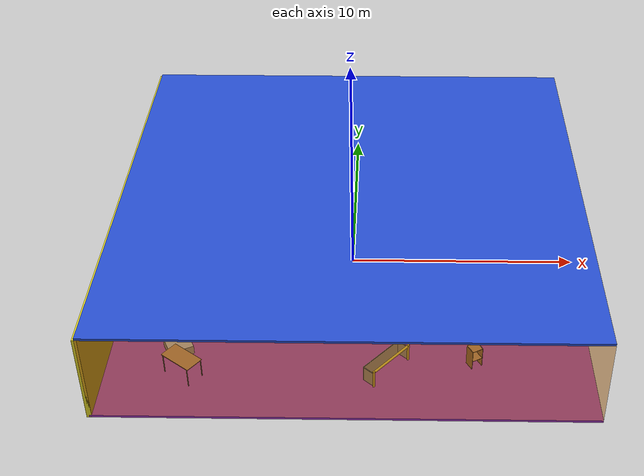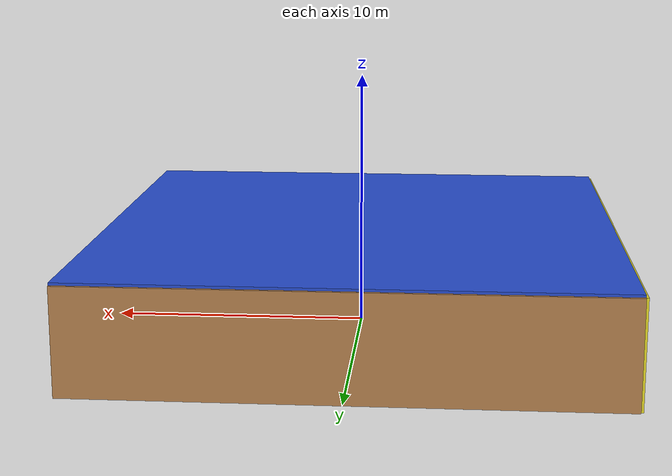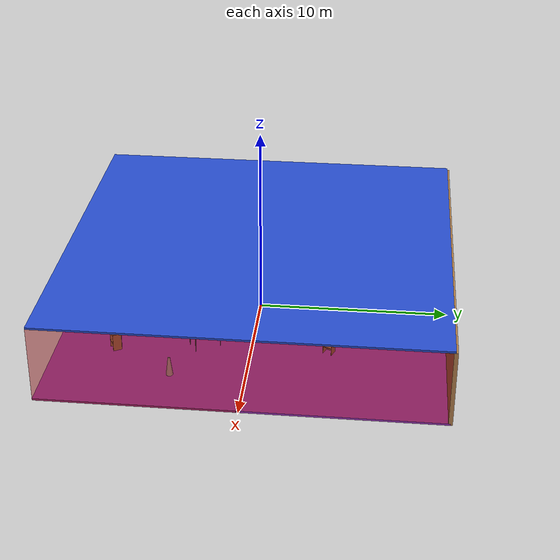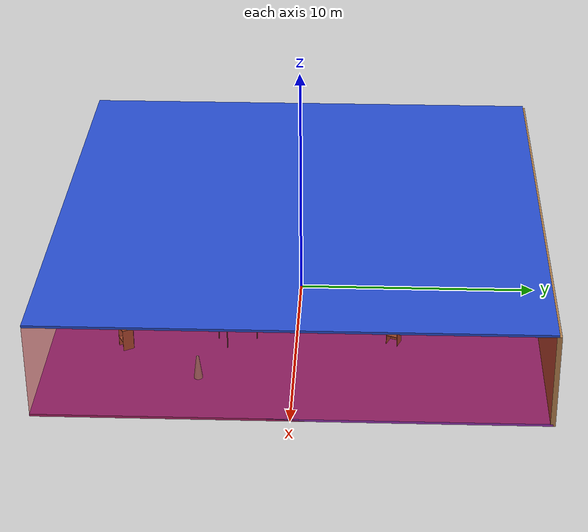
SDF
<sdf version="1.4">
 <world name="default">
  <physics type="ode">
   <max_step_size>0.001</max_step_size>
   <real_time_factor>1</real_time_factor>
   <real_time_update_rate>1000</real_time_update_rate>
   <gravity>0 0 -9.8</gravity>
  </physics>
  <scene><ambient>0.4 0.4 0.4 1</ambient><background>0.7 0.7 0.7 1</background><shadows>1</shadows></scene>
  <model name="Surrounding">
   <static>1</static>
   <link name="Ceiling">
    <collision name="Ceiling_Collision"><geometry><box><size>20 20 0.1</size></box></geometry></collision>
    <visual name="Ceiling_Visual">
     <geometry><box><size>20 20 0.1</size></box></geometry>
     <material>
      <script><uri>file://media/materials/scripts/gazebo.material</uri><name>Gazebo/BlueGlow</name></script>
     </material>
    </visual>
    <pose>0 0 4.05 0 0 0</pose>
   </link>
   <link name="Wall_South">
    <collision name="Wall_South_Collision">
     <geometry><box><size>20 0 4</size></box></geometry>
     <pose>0 0 2 0 -0 0</pose>
    </collision>
    <visual name="Wall_South_Visual">
     <pose>0 0 2 0 -0 0</pose>
     <geometry><box><size>20 0 4</size></box></geometry>
     <material>
      <script>
       <uri>file://media/materials/scripts/gazebo.material</uri>
       <name>Gazebo/OrangeTransparent</name>
      </script>
     </material>
    </visual>
    <velocity_decay><linear>0</linear><angular>0</angular></velocity_decay>
    <pose>0 -10 0 0 -0 0</pose>
   </link>
   <link name="Wall_East">
    <collision name="Wall_21_Collision">
     <geometry><box><size>20 0 4</size></box></geometry>
     <pose>0 0 2 0 -0 0</pose>
    </collision>
    <visual name="Wall_21_Visual">
     <pose>0 0 2 0 -0 0</pose>
     <geometry><box><size>20 0 4</size></box></geometry>
     <material>
      <script><uri>file://media/materials/scripts/gazebo.material</uri><name>Gazebo/RedTransparent</name></script>
     </material>
    </visual>
    <velocity_decay><linear>0</linear><angular>0</angular></velocity_decay>
    <pose>10 0 0 0 -0 1.5708</pose>
   </link>
   <link name="Wall_North">
    <collision name="Wall_22_Collision">
     <geometry><box><size>20 0.2 4</size></box></geometry>
     <pose>0 0 2 0 -0 0</pose>
    </collision>
    <visual name="Wall_22_Visual">
     <pose>0 0 2 0 -0 0</pose>
     <geometry><box><size>20 0.2 4</size></box></geometry>
     <material>
      <script><uri>file://media/materials/scripts/gazebo.material</uri><name>Gazebo/WoodPallet</name></script>
     </material>
    </visual>
    <velocity_decay><linear>0</linear><angular>0</angular></velocity_decay>
    <pose>0 10 0 0 -0 0</pose>
   </link>
   <link name="Wall_West">
    <collision name="Wall_23_Collision">
     <geometry><box><size>20 0.2 4</size></box></geometry>
     <pose>0 0 2 0 -0 0</pose>
    </collision>
    <visual name="Wall_23_Visual">
     <pose>0 0 2 0 -0 0</pose>
     <geometry><box><size>20 0.2 4</size></box></geometry>
     <material>
      <script><uri>file://media/materials/scripts/gazebo.material</uri><name>Gazebo/Yellow</name></script>
     </material>
    </visual>
    <velocity_decay><linear>0</linear><angular>0</angular></velocity_decay>
    <pose>-10 0 0 0 0 -1.5708</pose>
   </link>
   <link name="Ground_link">
    <collision name="collision">
     <pose>0 0 .05 0 -0 0</pose>
     <geometry><box><size>20 20 0.1</size></box></geometry>
    </collision>
    <visual name="visual">
     <pose>0 0 .05 0 -0 0</pose>
     <geometry><box><size>20 20 0.1</size></box></geometry>
     <material>
      <script><uri>file://media/materials/scripts/gazebo.material</uri><name>Gazebo/Purple</name></script>
     </material>
    </visual>
   </link>
   <static>1</static>
  </model>
  <spherical_coordinates>
   <surface_model>EARTH_WGS84</surface_model>
   <latitude_deg>0</latitude_deg>
   <longitude_deg>0</longitude_deg>
   <elevation>0</elevation>
   <heading_deg>0</heading_deg>
  </spherical_coordinates>
  <light name="lightball_0" type="diffuse">
   <diffuse>0.8 0.8 0.8 1</diffuse>
   <specular>0.2 0.2 0.2 1</specular>
   <attenuation>
    <range>100</range>
    <constant>0.7</constant>
    <linear>0.01</linear>
    <quadratic>0.001</quadratic>
   </attenuation>
   <direction>-0.5 0.1 -0.9</direction>
   <pose>4.28370426314 -7.36053097028 2.30106877081 0 0 0</pose>
  </light>
  <light name="lightball_1" type="diffuse">
   <diffuse>0.8 0.8 0.8 1</diffuse>
   <specular>0.2 0.2 0.2 1</specular>
   <attenuation>
    <range>100</range>
    <constant>0.7</constant>
    <linear>0.01</linear>
    <quadratic>0.001</quadratic>
   </attenuation>
   <direction>-0.5 0.1 -0.9</direction>
   <pose>8.1188536642 0.56340783907 1.1500194415 0 0 0</pose>
  </light>
  <light name="lightball_2" type="diffuse">
   <diffuse>0.8 0.8 0.8 1</diffuse>
   <specular>0.2 0.2 0.2 1</specular>
   <attenuation>
    <range>100</range>
    <constant>0.7</constant>
    <linear>0.01</linear>
    <quadratic>0.001</quadratic>
   </attenuation>
   <direction>-0.5 0.1 -0.9</direction>
   <pose>8.16151219887 5.31005383369 1.72444036576 0 0 0</pose>
  </light>
  <light name="lightball_3" type="diffuse">
   <diffuse>0.8 0.8 0.8 1</diffuse>
   <specular>0.2 0.2 0.2 1</specular>
   <attenuation>
    <range>100</range>
    <constant>0.7</constant>
    <linear>0.01</linear>
    <quadratic>0.001</quadratic>
   </attenuation>
   <direction>-0.5 0.1 -0.9</direction>
   <pose>-4.41448779939 -5.62916493878 3.38871286761 0 0 0</pose>
  </light>
  <light name="lightball_4" type="diffuse">
   <diffuse>0.8 0.8 0.8 1</diffuse>
   <specular>0.2 0.2 0.2 1</specular>
   <attenuation>
    <range>100</range>
    <constant>0.7</constant>
    <linear>0.01</linear>
    <quadratic>0.001</quadratic>
   </attenuation>
   <direction>-0.5 0.1 -0.9</direction>
   <pose>7.63592964999 -6.01467580483 3.36016472703 0 0 0</pose>
  </light>
  <light name="lightball_5" type="diffuse">
   <diffuse>0.8 0.8 0.8 1</diffuse>
   <specular>0.2 0.2 0.2 1</specular>
   <attenuation>
    <range>100</range>
    <constant>0.7</constant>
    <linear>0.01</linear>
    <quadratic>0.001</quadratic>
   </attenuation>
   <direction>-0.5 0.1 -0.9</direction>
   <pose>9.07539734877 5.24065159409 0.726428017722 0 0 0</pose>
  </light>
  <light name="lightball_6" type="diffuse">
   <diffuse>0.8 0.8 0.8 1</diffuse>
   <specular>0.2 0.2 0.2 1</specular>
   <attenuation>
    <range>100</range>
    <constant>0.7</constant>
    <linear>0.01</linear>
    <quadratic>0.001</quadratic>
   </attenuation>
   <direction>-0.5 0.1 -0.9</direction>
   <pose>-3.72874853285 2.76395053143 2.93239283929 0 0 0</pose>
  </light>
  <light name="lightball_7" type="diffuse">
   <diffuse>0.8 0.8 0.8 1</diffuse>
   <specular>0.2 0.2 0.2 1</specular>
   <attenuation>
    <range>100</range>
    <constant>0.7</constant>
    <linear>0.01</linear>
    <quadratic>0.001</quadratic>
   </attenuation>
   <direction>-0.5 0.1 -0.9</direction>
   <pose>-0.854067711906 -1.98642510557 0.577778566667 0 0 0</pose>
  </light>
  <light name="lightball_8" type="diffuse">
   <diffuse>0.8 0.8 0.8 1</diffuse>
   <specular>0.2 0.2 0.2 1</specular>
   <attenuation>
    <range>100</range>
    <constant>0.7</constant>
    <linear>0.01</linear>
    <quadratic>0.001</quadratic>
   </attenuation>
   <direction>-0.5 0.1 -0.9</direction>
   <pose>8.12808522221 3.42611861247 3.05338782214 0 0 0</pose>
  </light>
  <light name="lightball_9" type="diffuse">
   <diffuse>0.8 0.8 0.8 1</diffuse>
   <specular>0.2 0.2 0.2 1</specular>
   <attenuation>
    <range>100</range>
    <constant>0.7</constant>
    <linear>0.01</linear>
    <quadratic>0.001</quadratic>
   </attenuation>
   <direction>-0.5 0.1 -0.9</direction>
   <pose>-6.94241589413 -9.77143136706 0.899773548875 0 0 0</pose>
  </light>
  <light name="lightball_10" type="diffuse">
   <diffuse>0.8 0.8 0.8 1</diffuse>
   <specular>0.2 0.2 0.2 1</specular>
   <attenuation>
    <range>100</range>
    <constant>0.7</constant>
    <linear>0.01</linear>
    <quadratic>0.001</quadratic>
   </attenuation>
   <direction>-0.5 0.1 -0.9</direction>
   <pose>-4.48593114087 2.02423390093 2.62078370057 0 0 0</pose>
  </light>
  <include><uri>model://table</uri><pose>-6.66995689077 -7.62604386321 0 0 0 2.49036694324</pose></include>
  <include>
   <uri>model://textured_shapes</uri>
   <pose>-7.74003153296 -4.86779798463 0 0 0 0.468841284859</pose>
  </include>
  <include>
   <uri>model://robocup_3Dsim_goal</uri>
   <pose>1.75871995274 -7.45539045532 0 0 0 2.42191708832</pose>
  </include>
  <include><uri>model://cabinet</uri><pose>5.15320739839 -6.8973935244 0 0 0 2.07641318951</pose></include>
  <include><uri>model://table</uri><pose>4.40228649422 -2.39924334193 0 0 0 2.11669914312</pose></include>
  <include><uri>model://cabinet</uri><pose>4.4715032168 3.96387552357 0 0 0 2.76019576658</pose></include>
  <include>
   <uri>model://construction_cone</uri>
   <pose>7.2634391465 -3.76676724064 0 0 0 2.34151077775</pose>
  </include>
 </world>
</sdf>

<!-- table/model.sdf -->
<sdf version="1.5">
  <model name="table">
    <static>true</static>
    <link name="link">
      <collision name="surface">
        <pose>0 0 1.0 0 0 0</pose>
        <geometry>
          <box>
            <size>1.5 0.8 0.03</size>
          </box>
        </geometry>
        <surface>
          <friction>
            <ode>
              <mu>0.6</mu>
              <mu2>0.6</mu2>
            </ode>
          </friction>
        </surface>
      </collision>
      <visual name="visual1">
        <pose>0 0 1.0 0 0 0</pose>
        <geometry>
          <box>
            <size>1.5 0.8 0.03</size>
          </box>
        </geometry>
        <material>
          <script>
            <uri>model://media/materials/scripts/gazebo.material</uri>
            <name>Gazebo/Wood</name>
          </script>
        </material>
      </visual>
      <collision name="front_left_leg">
        <pose>0.68 0.38 0.5 0 0 0</pose>
        <geometry>
          <cylinder>
            <radius>0.02</radius>
            <length>1.0</length>
          </cylinder>
        </geometry>
      </collision>
      <visual name="front_left_leg">
        <pose>0.68 0.38 0.5 0 0 0</pose>
        <geometry>
          <cylinder>
            <radius>0.02</radius>
            <length>1.0</length>
          </cylinder>
        </geometry>
        <material>
          <script>
            <uri>model://media/materials/scripts/gazebo.material</uri>
            <name>Gazebo/Grey</name>
          </script>
        </material>
      </visual>
      <collision name="front_right_leg">
        <pose>0.68 -0.38 0.5 0 0 0</pose>
        <geometry>
          <cylinder>
            <radius>0.02</radius>
            <length>1.0</length>
          </cylinder>
        </geometry>
      </collision>
      <visual name="front_right_leg">
        <pose>0.68 -0.38 0.5 0 0 0</pose>
        <geometry>
          <cylinder>
            <radius>0.02</radius>
            <length>1.0</length>
          </cylinder>
        </geometry>
        <material>
          <script>
            <uri>model://media/materials/scripts/gazebo.material</uri>
            <name>Gazebo/Grey</name>
          </script>
        </material>
      </visual>
      <collision name="back_right_leg">
        <pose>-0.68 -0.38 0.5 0 0 0</pose>
        <geometry>
          <cylinder>
            <radius>0.02</radius>
            <length>1.0</length>
          </cylinder>
        </geometry>
      </collision>
      <visual name="back_right_leg">
        <pose>-0.68 -0.38 0.5 0 0 0</pose>
        <geometry>
          <cylinder>
            <radius>0.02</radius>
            <length>1.0</length>
          </cylinder>
        </geometry>
        <material>
          <script>
            <uri>model://media/materials/scripts/gazebo.material</uri>
            <name>Gazebo/Grey</name>
          </script>
        </material>
      </visual>
      <collision name="back_left_leg">
        <pose>-0.68 0.38 0.5 0 0 0</pose>
        <geometry>
          <cylinder>
            <radius>0.02</radius>
            <length>1.0</length>
          </cylinder>
        </geometry>
      </collision>
      <visual name="back_left_leg">
        <pose>-0.68 0.38 0.5 0 0 0</pose>
        <geometry>
          <cylinder>
            <radius>0.02</radius>
            <length>1.0</length>
          </cylinder>
        </geometry>
        <material>
          <script>
            <uri>model://media/materials/scripts/gazebo.material</uri>
            <name>Gazebo/Grey</name>
          </script>
        </material>
      </visual>
    </link>
  </model>
</sdf>

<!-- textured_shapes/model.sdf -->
<sdf version="1.6">
  <model name="textured_shapes">
    <pose>0 0 0.5 0 0 0</pose>
    <link name="box">
      <pose>0 -1.5 0 0 0 0</pose>
      <collision name="collision">
        <geometry>
          <box>
            <size>1 1 1</size>
          </box>
        </geometry>
      </collision>
      <visual name="visual">
        <geometry>
          <box>
            <size>1 1 1</size>
          </box>
        </geometry>
        <material>
          <script>
            <uri>model://../model_source/models/textured_shapes/materials/scripts</uri>
            <uri>model://../model_source/models/textured_shapes/materials/textures</uri>
            <name>TexturedShape/Squares</name>
          </script>
        </material>
      </visual>
    </link>
    <link name="sphere">
      <collision name="collision">
        <geometry>
          <sphere>
            <radius>0.5</radius>
          </sphere>
        </geometry>
      </collision>
      <visual name="visual">
        <geometry>
          <sphere>
            <radius>0.5</radius>
          </sphere>
        </geometry>
        <material>
          <script>
            <uri>model://../model_source/models/textured_shapes/materials/scripts</uri>
            <uri>model://../model_source/models/textured_shapes/materials/textures</uri>
            <name>TexturedShape/Squares</name>
          </script>
        </material>
      </visual>
    </link>
    <link name="cylinder">
      <pose>0 1.5 0 0 0 0</pose>
      <collision name="collision">
        <geometry>
          <cylinder>
            <radius>0.5</radius>
            <length>1</length>
          </cylinder>
        </geometry>
      </collision>
      <visual name="visual">
        <geometry>
          <cylinder>
            <radius>0.5</radius>
            <length>1</length>
          </cylinder>
        </geometry>
        <material>
          <script>
            <uri>model://../model_source/models/textured_shapes/materials/scripts</uri>
            <uri>model://../model_source/models/textured_shapes/materials/textures</uri>
            <name>TexturedShape/Squares</name>
          </script>
        </material>
      </visual>
    </link>
  </model>
</sdf>

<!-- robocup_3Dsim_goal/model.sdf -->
<sdf version="1.5">
  <model name="robocup_3d_goal">
    <static>true</static>
    <link name="left_post">
      <pose>0 1.05 0.45 0 0 0</pose>
      <collision name="collision">
        <geometry>
          <cylinder>
            <radius>0.05</radius>
            <length>0.9</length>
          </cylinder>
        </geometry>
      </collision>
      <visual name="visual">
        <geometry>
          <cylinder>
            <radius>0.05</radius>
            <length>0.9</length>
          </cylinder>
        </geometry>
        <material>
          <script>
            <uri>file://media/materials/scripts/gazebo.material</uri>
            <name>Gazebo/ZincYellow</name>
          </script>
        </material>
      </visual>
    </link>
    <link name="left_support_horiz_lower">
      <pose>0.30 1.05 0.01 0 0 0</pose>
      <collision name="collision">
        <geometry>
          <box>
            <size>0.50 0.02 0.02</size>
          </box>
        </geometry>
      </collision>
      <visual name="visual">
        <geometry>
          <box>
            <size>0.50 0.02 0.02</size>
          </box>
        </geometry>
        <material>
          <script>
            <uri>file://media/materials/scripts/gazebo.material</uri>
            <name>Gazebo/White</name>
          </script>
        </material>
      </visual>
    </link>
    <link name="left_support_horiz_upper">
      <pose>0.30 1.05 0.79 0 0 0</pose>
      <collision name="collision">
        <geometry>
          <box>
            <size>0.50 0.02 0.02</size>
          </box>
        </geometry>
      </collision>
      <visual name="visual">
        <geometry>
          <box>
            <size>0.50 0.02 0.02</size>
          </box>
        </geometry>
        <material>
          <script>
            <uri>file://media/materials/scripts/gazebo.material</uri>
            <name>Gazebo/White</name>
          </script>
        </material>
      </visual>
    </link>
    <link name="left_support_vertical">
      <pose>0.56 1.05 0.4 0 1.5708 0</pose>
      <collision name="collision">
        <geometry>
          <box>
            <size>0.80 0.02 0.02</size>
          </box>
        </geometry>
      </collision>
      <visual name="visual">
        <geometry>
          <box>
            <size>0.80 0.02 0.02</size>
          </box>
        </geometry>
        <material>
          <script>
            <uri>file://media/materials/scripts/gazebo.material</uri>
            <name>Gazebo/White</name>
          </script>
        </material>
      </visual>
    </link>
    <link name="right_support_horiz_lower">
      <pose>0.30 -1.05 0.01 0 0 0</pose>
      <collision name="collision">
        <geometry>
          <box>
            <size>0.50 0.02 0.02</size>
          </box>
        </geometry>
      </collision>
      <visual name="visual">
        <geometry>
          <box>
            <size>0.50 0.02 0.02</size>
          </box>
        </geometry>
        <material>
          <script>
            <uri>file://media/materials/scripts/gazebo.material</uri>
            <name>Gazebo/White</name>
          </script>
        </material>
      </visual>
    </link>
    <link name="right_support_horiz_upper">
      <pose>0.30 -1.05 0.79 0 0 0</pose>
      <collision name="collision">
        <geometry>
          <box>
            <size>0.50 0.02 0.02</size>
          </box>
        </geometry>
      </collision>
      <visual name="visual">
        <geometry>
          <box>
            <size>0.50 0.02 0.02</size>
          </box>
        </geometry>
        <material>
          <script>
            <uri>file://media/materials/scripts/gazebo.material</uri>
            <name>Gazebo/White</name>
          </script>
        </material>
      </visual>
    </link>
    <link name="right_support_vertical">
      <pose>0.56 -1.05 0.4 0 1.5708 0</pose>
      <collision name="collision">
        <geometry>
          <box>
            <size>0.80 0.02 0.02</size>
          </box>
        </geometry>
      </collision>
      <visual name="visual">
        <geometry>
          <box>
            <size>0.80 0.02 0.02</size>
          </box>
        </geometry>
        <material>
          <script>
            <uri>file://media/materials/scripts/gazebo.material</uri>
            <name>Gazebo/White</name>
          </script>
        </material>
      </visual>
    </link>
    <link name="center_support_horiz_lower">
      <pose>0.56 0 0.01 0 1.5708 0</pose>
      <collision name="collision">
        <geometry>
          <box>
            <size>0.02 2.08 0.02</size>
          </box>
        </geometry>
      </collision>
      <visual name="visual">
        <geometry>
          <box>
            <size>0.02 2.08 0.02</size>
          </box>
        </geometry>
        <material>
          <script>
            <uri>file://media/materials/scripts/gazebo.material</uri>
            <name>Gazebo/White</name>
          </script>
        </material>
      </visual>
    </link>
    <link name="center_support_horiz_upper">
      <pose>0.56 0 0.79 0 1.5708 0</pose>
      <collision name="collision">
        <geometry>
          <box>
            <size>0.02 2.08 0.02</size>
          </box>
        </geometry>
      </collision>
      <visual name="visual">
        <geometry>
          <box>
            <size>0.02 2.08 0.02</size>
          </box>
        </geometry>
        <material>
          <script>
            <uri>file://media/materials/scripts/gazebo.material</uri>
            <name>Gazebo/White</name>
          </script>
        </material>
      </visual>
    </link>
    <link name="right_post">
      <pose>0 -1.05 0.45 0 0 0</pose>
      <collision name="collision">
        <geometry>
          <cylinder>
            <radius>0.05</radius>
            <length>0.9</length>
          </cylinder>
        </geometry>
      </collision>
      <visual name="visual">
        <geometry>
          <cylinder>
            <radius>0.05</radius>
            <length>0.9</length>
          </cylinder>
        </geometry>
        <material>
          <script>
            <uri>file://media/materials/scripts/gazebo.material</uri>
            <name>Gazebo/ZincYellow</name>
          </script>
        </material>
      </visual>
    </link>
    <link name="crossbar">
      <pose>0 0 0.85 1.57 1.57 0</pose>
      <collision name="collision">
        <geometry>
          <cylinder>
            <radius>0.05</radius>
            <length>2.0</length>
          </cylinder>
        </geometry>
      </collision>
      <visual name="visual">
        <geometry>
          <cylinder>
            <radius>0.05</radius>
            <length>2.0</length>
          </cylinder>
        </geometry>
        <material>
          <script>
            <uri>file://media/materials/scripts/gazebo.material</uri>
            <name>Gazebo/ZincYellow</name>
          </script>
        </material>
      </visual>
    </link>
    <link name="center_net">
      <pose>0.56 0 0.40 0 0 0</pose>
      <collision name="collision">
        <geometry>
          <box>
            <size>0.01 2.1 0.80</size>
          </box>
        </geometry>
      </collision>
      <visual name="visual">
        <geometry>
          <box>
            <size>0.01 2.1 0.80</size>
          </box>
        </geometry>
        <material>
          <script>
            <uri>model://../model_source/models/robocup09_spl_field/materials/scripts/</uri>
            <uri>model://../model_source/models/robocup09_spl_field/materials/textures/</uri>
            <name>RoboCup/Net</name>
          </script>
        </material>
      </visual>
    </link>
    <link name="left_net">
      <pose>0.30 1.05 0.40 0 0 0</pose>
      <collision name="collision">
        <geometry>
          <box>
            <size>0.50 0.01 0.76</size>
          </box>
        </geometry>
      </collision>
      <visual name="visual">
        <geometry>
          <box>
            <size>0.50 0.01 0.76</size>
          </box>
        </geometry>
        <material>
          <script>
            <uri>model://../model_source/models/robocup09_spl_field/materials/scripts/</uri>
            <uri>model://../model_source/models/robocup09_spl_field/materials/textures/</uri>
            <name>RoboCup/Net</name>
          </script>
        </material>
      </visual>
    </link>
    <link name="right_net">
      <pose>0.30 -1.05 0.40 0 0 0</pose>
      <collision name="collision">
        <geometry>
          <box>
            <size>0.50 0.01 0.76</size>
          </box>
        </geometry>
      </collision>
      <visual name="visual">
        <geometry>
          <box>
            <size>0.50 0.01 0.76</size>
          </box>
        </geometry>
        <material>
          <script>
            <uri>model://../model_source/models/robocup09_spl_field/materials/scripts/</uri>
            <uri>model://../model_source/models/robocup09_spl_field/materials/textures/</uri>
            <name>RoboCup/Net</name>
          </script>
        </material>
      </visual>
    </link>
  </model>
</sdf>

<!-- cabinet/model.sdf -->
<sdf version="1.5">
  <model name="cabinet">
    <static>true</static>
    <link name="cabinet_bottom_plate">
      <inertial>
        <pose>0 0 -1 0 0 0</pose>
        <inertia>
          <ixx>2.050000</ixx>
          <ixy>0</ixy>
          <ixz>0</ixz>
          <iyy>2.050000</iyy>
          <iyz>0</iyz>
          <izz>2.050000</izz>
        </inertia>
        <mass>25.000000</mass>
      </inertial>
      <collision name="cabinet_bottom_plate_geom">
        <pose>0 0 0.010000 0 0 0</pose>
        <geometry>
          <box>
            <size>0.450000 0.450000 0.020000</size>
          </box>
        </geometry>
      </collision>
      <visual name="cabinet_bottom_plate_geom_visual">
        <pose>0 0 0.010000 0 0 0</pose>
        <geometry>
          <box>
            <size>0.450000 0.450000 0.020000</size>
          </box>
        </geometry>
        <material>
          <script>
            <uri>model://media/materials/scripts/gazebo.material</uri>
            <name>Gazebo/Wood</name>
          </script>
        </material>
      </visual>
      <collision name="cabinet_bottom_plate_geom_cabinet_back_plate">
        <pose>0.235000 0 0.510000 0 0 0</pose>
        <geometry>
          <box>
            <size>0.020000 0.450000 1.020000</size>
          </box>
        </geometry>
      </collision>
      <visual name="cabinet_bottom_plate_geom_cabinet_back_plate_visual">
        <pose>0.235000 0 0.510000 0 0 0</pose>
        <geometry>
          <box>
            <size>0.020000 0.450000 1.020000</size>
          </box>
        </geometry>
        <material>
          <script>
            <uri>model://media/materials/scripts/gazebo.material</uri>
            <name>Gazebo/Wood</name>
          </script>
        </material>
      </visual>
      <collision name="cabinet_bottom_plate_geom_cabinet_left_plate">
        <pose>0 0.235000 0.510000 0 0 0</pose>
        <geometry>
          <box>
            <size>0.450000 0.020000 1.020000</size>
          </box>
        </geometry>
      </collision>
      <visual name="cabinet_bottom_plate_geom_cabinet_left_plate_visual">
        <pose>0 0.235000 0.510000 0 0 0</pose>
        <geometry>
          <box>
            <size>0.450000 0.020000 1.020000</size>
          </box>
        </geometry>
        <material>
          <script>
            <uri>model://media/materials/scripts/gazebo.material</uri>
            <name>Gazebo/Wood</name>
          </script>
        </material>
      </visual>
      <collision name="cabinet_bottom_plate_geom_cabinet_middle_plate">
        <pose>0 0 0.510000 0 0 0</pose>
        <geometry>
          <box>
            <size>0.450000 0.450000 0.020000</size>
          </box>
        </geometry>
      </collision>
      <visual name="cabinet_bottom_plate_geom_cabinet_middle_plate_visual">
        <pose>0 0 0.510000 0 0 0</pose>
        <geometry>
          <box>
            <size>0.450000 0.450000 0.020000</size>
          </box>
        </geometry>
        <material>
          <script>
            <uri>model://media/materials/scripts/gazebo.material</uri>
            <name>Gazebo/Wood</name>
          </script>
        </material>
      </visual>
      <collision name="cabinet_bottom_plate_geom_cabinet_right_plate">
        <pose>0 -0.235000 0.510000 0 0 0</pose>
        <geometry>
          <box>
            <size>0.450000 0.020000 1.020000</size>
          </box>
        </geometry>
      </collision>
      <visual name="cabinet_bottom_plate_geom_cabinet_right_plate_visual">
        <pose>0 -0.235000 0.510000 0 0 0</pose>
        <geometry>
          <box>
            <size>0.450000 0.020000 1.020000</size>
          </box>
        </geometry>
        <material>
          <script>
            <uri>model://media/materials/scripts/gazebo.material</uri>
            <name>Gazebo/Wood</name>
          </script>
        </material>
      </visual>
      <collision name="cabinet_bottom_plate_geom_cabinet_top_plate">
        <pose>0 0 1.010000 0 0 0</pose>
        <geometry>
          <box>
            <size>0.450000 0.450000 0.020000</size>
          </box>
        </geometry>
      </collision>
      <visual name="cabinet_bottom_plate_geom_cabinet_top_plate_visual">
        <pose>0 0 1.010000 0 0 0</pose>
        <geometry>
          <box>
            <size>0.450000 0.450000 0.020000</size>
          </box>
        </geometry>
        <material>
          <script>
            <uri>model://media/materials/scripts/gazebo.material</uri>
            <name>Gazebo/Wood</name>
          </script>
        </material>
      </visual>
    </link>
  </model>
</sdf>

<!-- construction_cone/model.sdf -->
<sdf version="1.5">
  <model name="Construction Cone">
    <link name="link">
      <collision name="collision">
        <geometry>
          <mesh>
            <scale>10 10 10</scale>
            <uri>file://isr-testbed/construction_cone/meshes/construction_cone.dae</uri>
          </mesh>
        </geometry>
      </collision>
      <visual name="visual">
        <geometry>
          <mesh>
            <scale>10 10 10</scale>
            <uri>file://isr-testbed/construction_cone/meshes/construction_cone.dae</uri>
          </mesh>
        </geometry>
      </visual>
    </link>
  </model>
</sdf>
